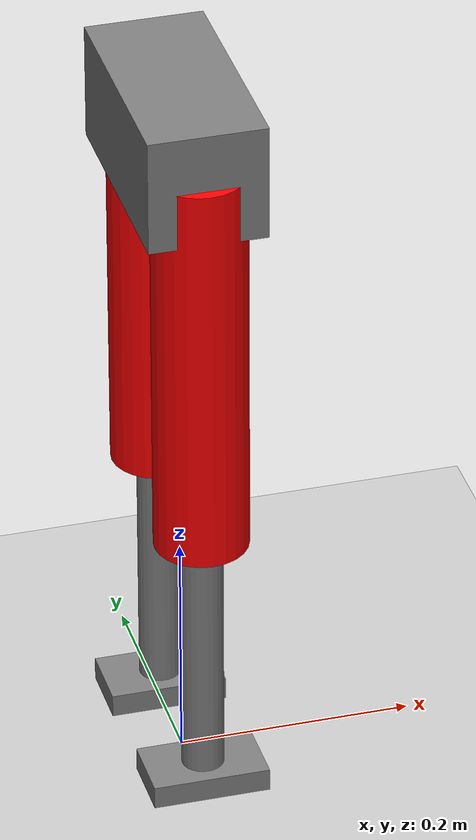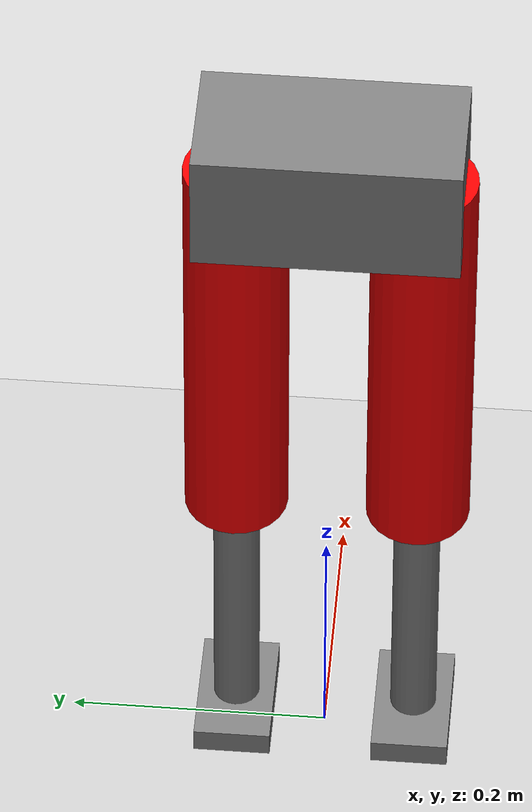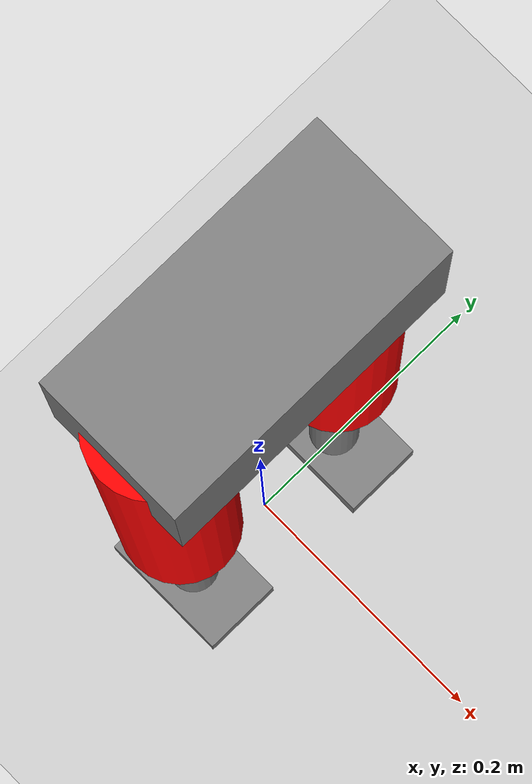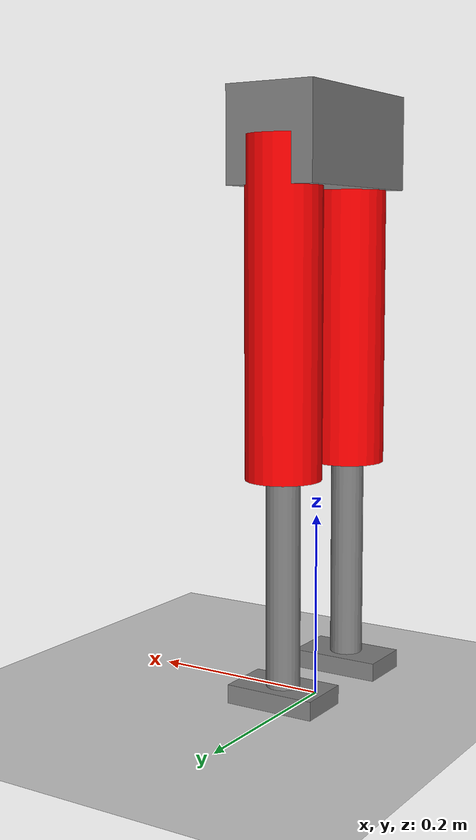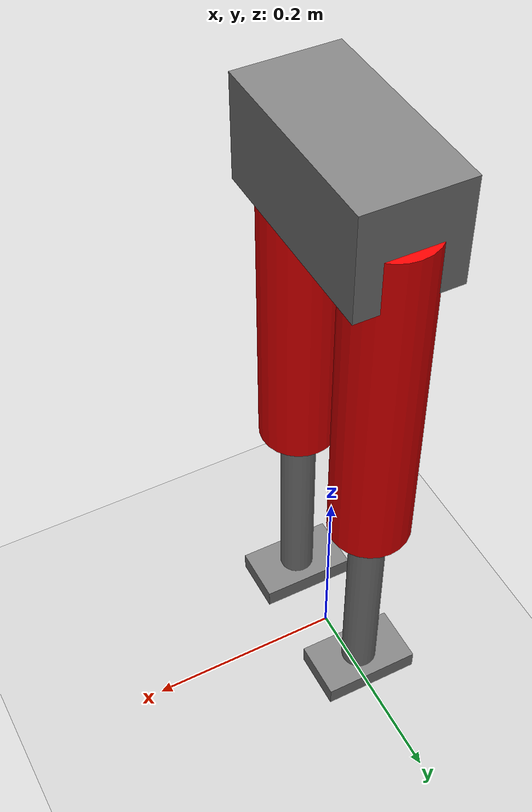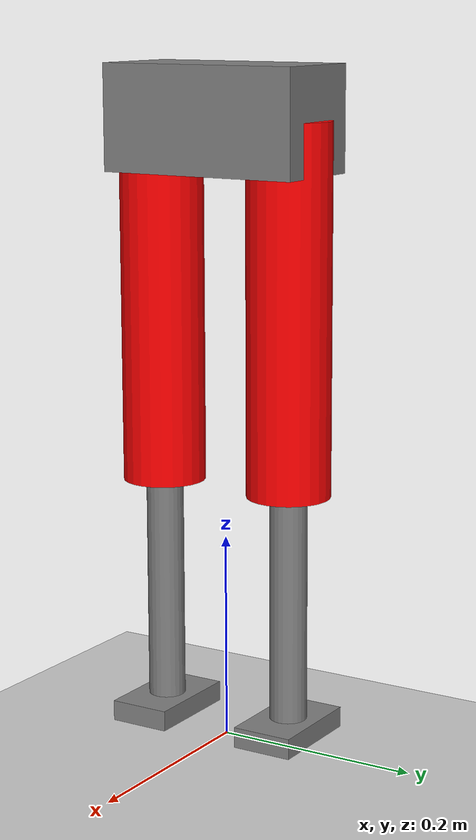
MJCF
<mujoco>

<compiler angle="degree"/>

<option gravity="0 0 -9.81"/>
<visual>

    <headlight
        ambient="0.4 0.4 0.4"
        diffuse="0.8 0.8 0.8"
        specular="0.2 0.2 0.2"/>

    <rgba haze="0.9 0.95 1 1"/>

</visual>
<asset>

    <!-- Sky -->
    <texture
        name="sky"
        type="skybox"
        builtin="gradient"
        rgb1="0.15 0.25 0.55"
        rgb2="0.95 0.97 1"
        width="512"
        height="512"/>

    <!-- Floor texture -->
    <texture
        name="ground_tex"
        type="2d"
        builtin="checker"
        rgb1=".85 .85 .85"
        rgb2=".75 .75 .75"
        width="512"
        height="512"/>

    <material
        name="ground_mat"
        texture="ground_tex"
        texrepeat="8 8"
        reflectance="0.15"/>

</asset>

<default>

    <joint
        damping="5"
        armature="0.01"/>

</default>

<worldbody>

    <light
        name="sun"
        pos="0 0 6"
        dir="0 0 -1"
        diffuse="1 1 1"
        specular="0.3 0.3 0.3"/>

    <geom
        name="floor"
        type="plane"
        size="10 10 0.1"
        material="ground_mat"/>
  <body name="pelvis" pos="0 0 0.6">
    <joint name="pelvis_x" type="slide" axis="1 0 0" range="-5 5" damping="5" armature="0.01"/>
    <geom name="pelvis_geom" type="box" size="0.05 0.1 0.05"/>

    <!-- LEFT LEG -->
    <body name="hip_roll_L" pos="0 0.07 0">
      <joint name="hip_roll_L" type="hinge" axis="1 0 0" range="-30 30"/>
      <geom type="sphere" size="0.02" rgba="1 0 0 1"/>

      <body name="hip_pitch_L" pos="0 0 0">
        <joint name="hip_pitch_L" type="hinge" axis="0 -1 0" range="-60 90"/>
        <geom type="sphere" size="0.02" />

        <body name="thigh_L" pos="0 0 -0.175">
          <geom type="cylinder" size="0.04 0.175" pos="0 0 0" rgba="1 0 0 1"/>
          <inertial pos="0 0 0" mass="0.5" diaginertia="0.005 0.005 0.001"/>

          <body name="knee_pitch_L" pos="0 0 -0.15">
            <joint name="knee_pitch_L" type="hinge" axis="0 -1 0" range="-120 0"/>
            <geom type="sphere" size="0.02"/>

            <body name="shank_L" pos="0 0 -0.125">
              <geom type="cylinder" size="0.018 0.125" pos="0 0 0"/>
              <inertial pos="0 0 0" mass="0.3" diaginertia="0.003 0.003 0.001"/>

              <body name="ankle_pitch_L" pos="0 0 -0.10">
                <joint name="ankle_pitch_L" type="hinge" axis="0 -1 0" range="-45 45"/>
                <geom type="sphere" size="0.015"/>

                <body name="ankle_roll_L" pos="0 0 0">
                  <joint name="ankle_roll_L" type="hinge" axis="1 0 0" range="-25 25"/>
                  <geom type="sphere" size="0.015"/>

                  <body name="foot_L" pos="0 0 -0.03">
                    <geom type="box" size="0.05 0.03 0.01"/>
                    <inertial pos="0 0 0" mass="0.1" diaginertia="0.0001 0.0001 0.0001"/>
                    <site name="foot_ee_L" pos="0 0 -0.01" size="0.005"/>
                  </body>

                </body>
              </body>
            </body>
          </body>
        </body>
      </body>
    </body>
   <body name="hip_roll_R" pos="0 -0.07 0">
      <joint name="hip_roll_R" type="hinge" axis="1 0 0" range="-30 30"/>
      <geom type="sphere" size="0.02" rgba ="1 0 0 1"/>

      <body name="hip_pitch_R" pos="0 0 0">
        <joint name="hip_pitch_R" type="hinge" axis="0 -1 0" range="-60 90"/>
        <geom type="sphere" size="0.02"/>

        <body name="thigh_R" pos="0 0 -0.175">
          <geom type="cylinder" size="0.04 0.175" pos="0 0 0" rgba="1 0 0 1"/>
          <inertial pos="0 0 0" mass="0.5" diaginertia="0.005 0.005 0.001"/>

          <body name="knee_pitch_R" pos="0 0 -0.15">
            <joint name="knee_pitch_R" type="hinge" axis="0 -1 0" range="-120 0"/>
            <geom type="sphere" size="0.02"/>

            <body name="shank_R" pos="0 0 -0.125">
              <geom type="cylinder" size="0.018 0.125" pos="0 0 0"/>
              <inertial pos="0 0 0" mass="0.3" diaginertia="0.003 0.003 0.001"/>

              <body name="ankle_pitch_R" pos="0 0 -0.10">
                <joint name="ankle_pitch_R" type="hinge" axis="0 -1 0" range="-45 45"/>
                <geom type="sphere" size="0.015"/>

                <body name="ankle_roll_R" pos="0 0 0">
                  <joint name="ankle_roll_R" type="hinge" axis="1 0 0" range="-25 25"/>
                  <geom type="sphere" size="0.015"/>

                  <body name="foot_R" pos="0 0 -0.03">
                    <geom type="box" size="0.05 0.03 0.01"/>
                    <inertial pos="0 0 0" mass="0.1" diaginertia="0.0001 0.0001 0.0001"/>
                    <site name="foot_ee_R" pos="0 0 -0.01" size="0.005"/>
                  </body>

                </body>
              </body>
            </body>
          </body>
        </body>
      </body>
    </body>

  </body>
</worldbody>
</mujoco>
